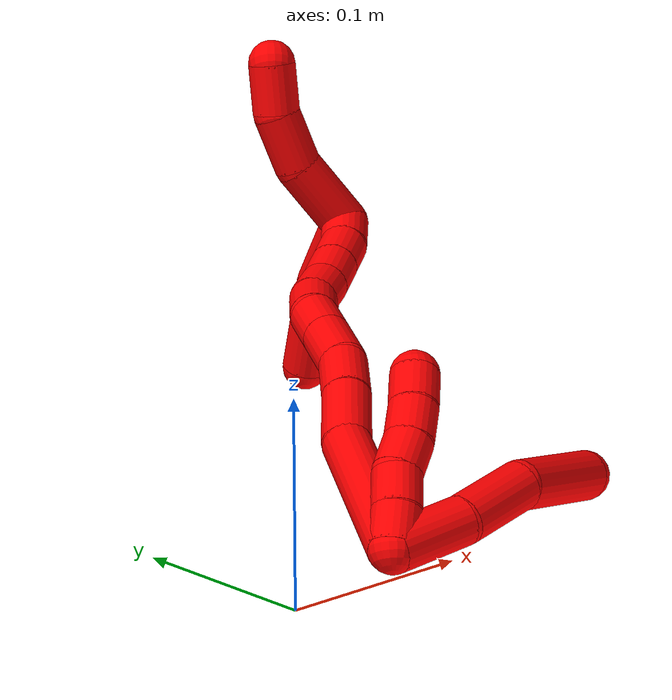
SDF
<sdf version="1.7">
 <world name="default">
  <model name="bin">
   <static>1</static>
   <link name="bottom">
    <collision name="collision-bottom">
     <pose>0 0 -0.01 0 -0 0</pose>
     <geometry><box><size>0.8 0.6 0.02</size></box></geometry>
     <surface>
      <friction><ode><mu>100</mu><mu2>100</mu2></ode></friction>
      <contact><collide_bitmask>65535</collide_bitmask></contact>
     </surface>
    </collision>
   </link>
   <link name="west_wall">
    <collision name="collision-west_wall">
     <pose>-0.41 0 0.1 0 -0 0</pose>
     <geometry><box><size>0.02 0.6 0.2</size></box></geometry>
     <surface>
      <friction><ode><mu>100</mu><mu2>100</mu2></ode></friction>
      <contact><collide_bitmask>65535</collide_bitmask></contact>
     </surface>
    </collision>
   </link>
   <link name="east_wall">
    <collision name="collision-east_wall">
     <pose>0.41 0 0.1 0 -0 0</pose>
     <geometry><box><size>0.02 0.6 0.2</size></box></geometry>
     <surface>
      <friction><ode><mu>100</mu><mu2>100</mu2></ode></friction>
      <contact><collide_bitmask>65535</collide_bitmask></contact>
     </surface>
    </collision>
   </link>
   <link name="south_wall">
    <collision name="collision-south_wall">
     <pose>0 -0.31 0.1 0 -0 0</pose>
     <geometry><box><size>0.8 0.02 0.2</size></box></geometry>
     <surface>
      <friction><ode><mu>100</mu><mu2>100</mu2></ode></friction>
      <contact><collide_bitmask>65535</collide_bitmask></contact>
     </surface>
    </collision>
   </link>
   <link name="north_wall">
    <collision name="collision-north_wall">
     <pose>0 0.31 0.1 0 -0 0</pose>
     <geometry><box><size>0.8 0.02 0.2</size></box></geometry>
     <surface>
      <friction><ode><mu>100</mu><mu2>100</mu2></ode></friction>
      <contact><collide_bitmask>65535</collide_bitmask></contact>
     </surface>
    </collision>
   </link>
  </model>
  <model name="2">
   <static>0</static>
   <link name="2">
    <collision name="collision-cylinder-e_1_2_8">
     <pose>0.018976 7.2e-05 0.008549 -0.008405 1.14749 -0.005432</pose>
     <geometry><cylinder><radius>0.0125</radius><length>0.041626</length></cylinder></geometry>
     <surface>
      <friction><ode><mu>1.16</mu><mu2>1.16</mu2><slip1>0</slip1><slip2>0</slip2></ode></friction>
      <contact><ode><kp>1e+06</kp><kd>1</kd><max_vel>0</max_vel><min_depth>0.001</min_depth></ode></contact>
     </surface>
    </collision>
    <visual name="visual-cylinder-e_1_2_8">
     <pose>0.018976 7.2e-05 0.008549 -0.008405 1.14749 -0.005432</pose>
     <geometry><cylinder><radius>0.0125</radius><length>0.041626</length></cylinder></geometry>
     <material><ambient>1 0 0 1</ambient></material>
    </visual>
    <collision name="collision-cylinder-e_2_8_9">
     <pose>0.05664 0.004055 0.028739 -0.32416 0.989438 -0.175965</pose>
     <geometry><cylinder><radius>0.0125</radius><length>0.044723</length></cylinder></geometry>
     <surface>
      <friction><ode><mu>1.16</mu><mu2>1.16</mu2><slip1>0</slip1><slip2>0</slip2></ode></friction>
      <contact><ode><kp>1e+06</kp><kd>1</kd><max_vel>0</max_vel><min_depth>0.001</min_depth></ode></contact>
     </surface>
    </collision>
    <visual name="visual-cylinder-e_2_8_9">
     <pose>0.05664 0.004055 0.028739 -0.32416 0.989438 -0.175965</pose>
     <geometry><cylinder><radius>0.0125</radius><length>0.044723</length></cylinder></geometry>
     <material><ambient>1 0 0 1</ambient></material>
    </visual>
    <collision name="collision-cylinder-e_3_9_6">
     <pose>0.102463 0.021744 0.049693 -0.976366 1.02098 -0.578124</pose>
     <geometry><cylinder><radius>0.0125</radius><length>0.063651</length></cylinder></geometry>
     <surface>
      <friction><ode><mu>1.16</mu><mu2>1.16</mu2><slip1>0</slip1><slip2>0</slip2></ode></friction>
      <contact><ode><kp>1e+06</kp><kd>1</kd><max_vel>0</max_vel><min_depth>0.001</min_depth></ode></contact>
     </surface>
    </collision>
    <visual name="visual-cylinder-e_3_9_6">
     <pose>0.102463 0.021744 0.049693 -0.976366 1.02098 -0.578124</pose>
     <geometry><cylinder><radius>0.0125</radius><length>0.063651</length></cylinder></geometry>
     <material><ambient>1 0 0 1</ambient></material>
    </visual>
    <collision name="collision-cylinder-e_1_2_10">
     <pose>0.002096 0.000942 0.009732 -0.096523 0.211161 -0.010237</pose>
     <geometry><cylinder><radius>0.0125</radius><length>0.02</length></cylinder></geometry>
     <surface>
      <friction><ode><mu>1.16</mu><mu2>1.16</mu2><slip1>0</slip1><slip2>0</slip2></ode></friction>
      <contact><ode><kp>1e+06</kp><kd>1</kd><max_vel>0</max_vel><min_depth>0.001</min_depth></ode></contact>
     </surface>
    </collision>
    <visual name="visual-cylinder-e_1_2_10">
     <pose>0.002096 0.000942 0.009732 -0.096523 0.211161 -0.010237</pose>
     <geometry><cylinder><radius>0.0125</radius><length>0.02</length></cylinder></geometry>
     <material><ambient>1 0 0 1</ambient></material>
    </visual>
    <collision name="collision-cylinder-e_2_10_11">
     <pose>0.005765 0.003593 0.029191 -0.173828 0.15798 -0.013794</pose>
     <geometry><cylinder><radius>0.0125</radius><length>0.02</length></cylinder></geometry>
     <surface>
      <friction><ode><mu>1.16</mu><mu2>1.16</mu2><slip1>0</slip1><slip2>0</slip2></ode></friction>
      <contact><ode><kp>1e+06</kp><kd>1</kd><max_vel>0</max_vel><min_depth>0.001</min_depth></ode></contact>
     </surface>
    </collision>
    <visual name="visual-cylinder-e_2_10_11">
     <pose>0.005765 0.003593 0.029191 -0.173828 0.15798 -0.013794</pose>
     <geometry><cylinder><radius>0.0125</radius><length>0.02</length></cylinder></geometry>
     <material><ambient>1 0 0 1</ambient></material>
    </visual>
    <collision name="collision-cylinder-e_3_11_12">
     <pose>0.01172 0.006743 0.047791 -0.161179 0.453524 -0.037265</pose>
     <geometry><cylinder><radius>0.0125</radius><length>0.02</length></cylinder></geometry>
     <surface>
      <friction><ode><mu>1.16</mu><mu2>1.16</mu2><slip1>0</slip1><slip2>0</slip2></ode></friction>
      <contact><ode><kp>1e+06</kp><kd>1</kd><max_vel>0</max_vel><min_depth>0.001</min_depth></ode></contact>
     </surface>
    </collision>
    <visual name="visual-cylinder-e_3_11_12">
     <pose>0.01172 0.006743 0.047791 -0.161179 0.453524 -0.037265</pose>
     <geometry><cylinder><radius>0.0125</radius><length>0.02</length></cylinder></geometry>
     <material><ambient>1 0 0 1</ambient></material>
    </visual>
    <collision name="collision-cylinder-e_4_12_13">
     <pose>0.018956 0.010058 0.066062 -0.196616 0.289478 -0.028749</pose>
     <geometry><cylinder><radius>0.0125</radius><length>0.02</length></cylinder></geometry>
     <surface>
      <friction><ode><mu>1.16</mu><mu2>1.16</mu2><slip1>0</slip1><slip2>0</slip2></ode></friction>
      <contact><ode><kp>1e+06</kp><kd>1</kd><max_vel>0</max_vel><min_depth>0.001</min_depth></ode></contact>
     </surface>
    </collision>
    <visual name="visual-cylinder-e_4_12_13">
     <pose>0.018956 0.010058 0.066062 -0.196616 0.289478 -0.028749</pose>
     <geometry><cylinder><radius>0.0125</radius><length>0.02</length></cylinder></geometry>
     <material><ambient>1 0 0 1</ambient></material>
    </visual>
    <collision name="collision-cylinder-e_5_13_5">
     <pose>0.024204 0.014677 0.084775 -0.286759 0.241701 -0.035062</pose>
     <geometry><cylinder><radius>0.0125</radius><length>0.02</length></cylinder></geometry>
     <surface>
      <friction><ode><mu>1.16</mu><mu2>1.16</mu2><slip1>0</slip1><slip2>0</slip2></ode></friction>
      <contact><ode><kp>1e+06</kp><kd>1</kd><max_vel>0</max_vel><min_depth>0.001</min_depth></ode></contact>
     </surface>
    </collision>
    <visual name="visual-cylinder-e_5_13_5">
     <pose>0.024204 0.014677 0.084775 -0.286759 0.241701 -0.035062</pose>
     <geometry><cylinder><radius>0.0125</radius><length>0.02</length></cylinder></geometry>
     <material><ambient>1 0 0 1</ambient></material>
    </visual>
    <collision name="collision-cylinder-e_1_2_14">
     <pose>0.003703 0.027671 0.03461 -0.674439 0.083366 -0.029244</pose>
     <geometry><cylinder><radius>0.0125</radius><length>0.088933</length></cylinder></geometry>
     <surface>
      <friction><ode><mu>1.16</mu><mu2>1.16</mu2><slip1>0</slip1><slip2>0</slip2></ode></friction>
      <contact><ode><kp>1e+06</kp><kd>1</kd><max_vel>0</max_vel><min_depth>0.001</min_depth></ode></contact>
     </surface>
    </collision>
    <visual name="visual-cylinder-e_1_2_14">
     <pose>0.003703 0.027671 0.03461 -0.674439 0.083366 -0.029244</pose>
     <geometry><cylinder><radius>0.0125</radius><length>0.088933</length></cylinder></geometry>
     <material><ambient>1 0 0 1</ambient></material>
    </visual>
    <collision name="collision-cylinder-e_2_14_15">
     <pose>0.011751 0.062463 0.084264 -0.442067 0.255365 -0.05768</pose>
     <geometry><cylinder><radius>0.0125</radius><length>0.034404</length></cylinder></geometry>
     <surface>
      <friction><ode><mu>1.16</mu><mu2>1.16</mu2><slip1>0</slip1><slip2>0</slip2></ode></friction>
      <contact><ode><kp>1e+06</kp><kd>1</kd><max_vel>0</max_vel><min_depth>0.001</min_depth></ode></contact>
     </surface>
    </collision>
    <visual name="visual-cylinder-e_2_14_15">
     <pose>0.011751 0.062463 0.084264 -0.442067 0.255365 -0.05768</pose>
     <geometry><cylinder><radius>0.0125</radius><length>0.034404</length></cylinder></geometry>
     <material><ambient>1 0 0 1</ambient></material>
    </visual>
    <collision name="collision-cylinder-e_3_15_16">
     <pose>0.018826 0.075772 0.110178 -0.51761 0.214931 -0.057106</pose>
     <geometry><cylinder><radius>0.0125</radius><length>0.025606</length></cylinder></geometry>
     <surface>
      <friction><ode><mu>1.16</mu><mu2>1.16</mu2><slip1>0</slip1><slip2>0</slip2></ode></friction>
      <contact><ode><kp>1e+06</kp><kd>1</kd><max_vel>0</max_vel><min_depth>0.001</min_depth></ode></contact>
     </surface>
    </collision>
    <visual name="visual-cylinder-e_3_15_16">
     <pose>0.018826 0.075772 0.110178 -0.51761 0.214931 -0.057106</pose>
     <geometry><cylinder><radius>0.0125</radius><length>0.025606</length></cylinder></geometry>
     <material><ambient>1 0 0 1</ambient></material>
    </visual>
    <collision name="collision-cylinder-e_4_16_17">
     <pose>0.022072 0.091203 0.131537 -0.722266 0.036844 -0.013917</pose>
     <geometry><cylinder><radius>0.0125</radius><length>0.027979</length></cylinder></geometry>
     <surface>
      <friction><ode><mu>1.16</mu><mu2>1.16</mu2><slip1>0</slip1><slip2>0</slip2></ode></friction>
      <contact><ode><kp>1e+06</kp><kd>1</kd><max_vel>0</max_vel><min_depth>0.001</min_depth></ode></contact>
     </surface>
    </collision>
    <visual name="visual-cylinder-e_4_16_17">
     <pose>0.022072 0.091203 0.131537 -0.722266 0.036844 -0.013917</pose>
     <geometry><cylinder><radius>0.0125</radius><length>0.027979</length></cylinder></geometry>
     <material><ambient>1 0 0 1</ambient></material>
    </visual>
    <collision name="collision-cylinder-e_5_17_18">
     <pose>0.022922 0.107646 0.150208 -0.721746 0.030677 -0.011578</pose>
     <geometry><cylinder><radius>0.0125</radius><length>0.021807</length></cylinder></geometry>
     <surface>
      <friction><ode><mu>1.16</mu><mu2>1.16</mu2><slip1>0</slip1><slip2>0</slip2></ode></friction>
      <contact><ode><kp>1e+06</kp><kd>1</kd><max_vel>0</max_vel><min_depth>0.001</min_depth></ode></contact>
     </surface>
    </collision>
    <visual name="visual-cylinder-e_5_17_18">
     <pose>0.022922 0.107646 0.150208 -0.721746 0.030677 -0.011578</pose>
     <geometry><cylinder><radius>0.0125</radius><length>0.021807</length></cylinder></geometry>
     <material><ambient>1 0 0 1</ambient></material>
    </visual>
    <collision name="collision-cylinder-e_6_18_19">
     <pose>0.026726 0.121584 0.165458 -0.761391 0.341411 -0.137764</pose>
     <geometry><cylinder><radius>0.0125</radius><length>0.020727</length></cylinder></geometry>
     <surface>
      <friction><ode><mu>1.16</mu><mu2>1.16</mu2><slip1>0</slip1><slip2>0</slip2></ode></friction>
      <contact><ode><kp>1e+06</kp><kd>1</kd><max_vel>0</max_vel><min_depth>0.001</min_depth></ode></contact>
     </surface>
    </collision>
    <visual name="visual-cylinder-e_6_18_19">
     <pose>0.026726 0.121584 0.165458 -0.761391 0.341411 -0.137764</pose>
     <geometry><cylinder><radius>0.0125</radius><length>0.020727</length></cylinder></geometry>
     <material><ambient>1 0 0 1</ambient></material>
    </visual>
    <collision name="collision-cylinder-e_7_19_20">
     <pose>0.03603 0.132969 0.179197 -0.608512 0.622358 -0.201303</pose>
     <geometry><cylinder><radius>0.0125</radius><length>0.020014</length></cylinder></geometry>
     <surface>
      <friction><ode><mu>1.16</mu><mu2>1.16</mu2><slip1>0</slip1><slip2>0</slip2></ode></friction>
      <contact><ode><kp>1e+06</kp><kd>1</kd><max_vel>0</max_vel><min_depth>0.001</min_depth></ode></contact>
     </surface>
    </collision>
    <visual name="visual-cylinder-e_7_19_20">
     <pose>0.03603 0.132969 0.179197 -0.608512 0.622358 -0.201303</pose>
     <geometry><cylinder><radius>0.0125</radius><length>0.020014</length></cylinder></geometry>
     <material><ambient>1 0 0 1</ambient></material>
    </visual>
    <collision name="collision-cylinder-e_8_20_21">
     <pose>0.047105 0.141499 0.193458 -0.472794 0.551313 -0.136071</pose>
     <geometry><cylinder><radius>0.0125</radius><length>0.020014</length></cylinder></geometry>
     <surface>
      <friction><ode><mu>1.16</mu><mu2>1.16</mu2><slip1>0</slip1><slip2>0</slip2></ode></friction>
      <contact><ode><kp>1e+06</kp><kd>1</kd><max_vel>0</max_vel><min_depth>0.001</min_depth></ode></contact>
     </surface>
    </collision>
    <visual name="visual-cylinder-e_8_20_21">
     <pose>0.047105 0.141499 0.193458 -0.472794 0.551313 -0.136071</pose>
     <geometry><cylinder><radius>0.0125</radius><length>0.020014</length></cylinder></geometry>
     <material><ambient>1 0 0 1</ambient></material>
    </visual>
    <collision name="collision-cylinder-e_9_21_22">
     <pose>0.057578 0.149372 0.208672 -0.482288 0.54614 -0.137536</pose>
     <geometry><cylinder><radius>0.0125</radius><length>0.020142</length></cylinder></geometry>
     <surface>
      <friction><ode><mu>1.16</mu><mu2>1.16</mu2><slip1>0</slip1><slip2>0</slip2></ode></friction>
      <contact><ode><kp>1e+06</kp><kd>1</kd><max_vel>0</max_vel><min_depth>0.001</min_depth></ode></contact>
     </surface>
    </collision>
    <visual name="visual-cylinder-e_9_21_22">
     <pose>0.057578 0.149372 0.208672 -0.482288 0.54614 -0.137536</pose>
     <geometry><cylinder><radius>0.0125</radius><length>0.020142</length></cylinder></geometry>
     <material><ambient>1 0 0 1</ambient></material>
    </visual>
    <collision name="collision-cylinder-e_10_22_1">
     <pose>0.065921 0.157865 0.224888 -0.48259 0.310536 -0.077002</pose>
     <geometry><cylinder><radius>0.0125</radius><length>0.020375</length></cylinder></geometry>
     <surface>
      <friction><ode><mu>1.16</mu><mu2>1.16</mu2><slip1>0</slip1><slip2>0</slip2></ode></friction>
      <contact><ode><kp>1e+06</kp><kd>1</kd><max_vel>0</max_vel><min_depth>0.001</min_depth></ode></contact>
     </surface>
    </collision>
    <visual name="visual-cylinder-e_10_22_1">
     <pose>0.065921 0.157865 0.224888 -0.48259 0.310536 -0.077002</pose>
     <geometry><cylinder><radius>0.0125</radius><length>0.020375</length></cylinder></geometry>
     <material><ambient>1 0 0 1</ambient></material>
    </visual>
    <collision name="collision-cylinder-e_1_1_23">
     <pose>0.071353 0.183267 0.224162 -1.99021 0.100967 -0.155384</pose>
     <geometry><cylinder><radius>0.0125</radius><length>0.046002</length></cylinder></geometry>
     <surface>
      <friction><ode><mu>1.16</mu><mu2>1.16</mu2><slip1>0</slip1><slip2>0</slip2></ode></friction>
      <contact><ode><kp>1e+06</kp><kd>1</kd><max_vel>0</max_vel><min_depth>0.001</min_depth></ode></contact>
     </surface>
    </collision>
    <visual name="visual-cylinder-e_1_1_23">
     <pose>0.071353 0.183267 0.224162 -1.99021 0.100967 -0.155384</pose>
     <geometry><cylinder><radius>0.0125</radius><length>0.046002</length></cylinder></geometry>
     <material><ambient>1 0 0 1</ambient></material>
    </visual>
    <collision name="collision-cylinder-e_2_23_24">
     <pose>0.075504 0.212655 0.207536 -2.28163 0.162197 -0.350814</pose>
     <geometry><cylinder><radius>0.0125</radius><length>0.022697</length></cylinder></geometry>
     <surface>
      <friction><ode><mu>1.16</mu><mu2>1.16</mu2><slip1>0</slip1><slip2>0</slip2></ode></friction>
      <contact><ode><kp>1e+06</kp><kd>1</kd><max_vel>0</max_vel><min_depth>0.001</min_depth></ode></contact>
     </surface>
    </collision>
    <visual name="visual-cylinder-e_2_23_24">
     <pose>0.075504 0.212655 0.207536 -2.28163 0.162197 -0.350814</pose>
     <geometry><cylinder><radius>0.0125</radius><length>0.022697</length></cylinder></geometry>
     <material><ambient>1 0 0 1</ambient></material>
    </visual>
    <collision name="collision-cylinder-e_3_24_4">
     <pose>0.080067 0.23285 0.190208 -2.27869 0.175366 -0.377356</pose>
     <geometry><cylinder><radius>0.0125</radius><length>0.031302</length></cylinder></geometry>
     <surface>
      <friction><ode><mu>1.16</mu><mu2>1.16</mu2><slip1>0</slip1><slip2>0</slip2></ode></friction>
      <contact><ode><kp>1e+06</kp><kd>1</kd><max_vel>0</max_vel><min_depth>0.001</min_depth></ode></contact>
     </surface>
    </collision>
    <visual name="visual-cylinder-e_3_24_4">
     <pose>0.080067 0.23285 0.190208 -2.27869 0.175366 -0.377356</pose>
     <geometry><cylinder><radius>0.0125</radius><length>0.031302</length></cylinder></geometry>
     <material><ambient>1 0 0 1</ambient></material>
    </visual>
    <collision name="collision-cylinder-e_1_1_25">
     <pose>0.052575 0.156501 0.245382 0.457918 -0.892307 -0.222024</pose>
     <geometry><cylinder><radius>0.0125</radius><length>0.042282</length></cylinder></geometry>
     <surface>
      <friction><ode><mu>1.16</mu><mu2>1.16</mu2><slip1>0</slip1><slip2>0</slip2></ode></friction>
      <contact><ode><kp>1e+06</kp><kd>1</kd><max_vel>0</max_vel><min_depth>0.001</min_depth></ode></contact>
     </surface>
    </collision>
    <visual name="visual-cylinder-e_1_1_25">
     <pose>0.052575 0.156501 0.245382 0.457918 -0.892307 -0.222024</pose>
     <geometry><cylinder><radius>0.0125</radius><length>0.042282</length></cylinder></geometry>
     <material><ambient>1 0 0 1</ambient></material>
    </visual>
    <collision name="collision-cylinder-e_2_25_26">
     <pose>0.027399 0.144455 0.268582 0.500545 -0.595069 -0.156453</pose>
     <geometry><cylinder><radius>0.0125</radius><length>0.031102</length></cylinder></geometry>
     <surface>
      <friction><ode><mu>1.16</mu><mu2>1.16</mu2><slip1>0</slip1><slip2>0</slip2></ode></friction>
      <contact><ode><kp>1e+06</kp><kd>1</kd><max_vel>0</max_vel><min_depth>0.001</min_depth></ode></contact>
     </surface>
    </collision>
    <visual name="visual-cylinder-e_2_25_26">
     <pose>0.027399 0.144455 0.268582 0.500545 -0.595069 -0.156453</pose>
     <geometry><cylinder><radius>0.0125</radius><length>0.031102</length></cylinder></geometry>
     <material><ambient>1 0 0 1</ambient></material>
    </visual>
    <collision name="collision-cylinder-e_3_26_3">
     <pose>0.015056 0.132493 0.291305 0.46846 -0.275988 -0.066251</pose>
     <geometry><cylinder><radius>0.0125</radius><length>0.026616</length></cylinder></geometry>
     <surface>
      <friction><ode><mu>1.16</mu><mu2>1.16</mu2><slip1>0</slip1><slip2>0</slip2></ode></friction>
      <contact><ode><kp>1e+06</kp><kd>1</kd><max_vel>0</max_vel><min_depth>0.001</min_depth></ode></contact>
     </surface>
    </collision>
    <visual name="visual-cylinder-e_3_26_3">
     <pose>0.015056 0.132493 0.291305 0.46846 -0.275988 -0.066251</pose>
     <geometry><cylinder><radius>0.0125</radius><length>0.026616</length></cylinder></geometry>
     <material><ambient>1 0 0 1</ambient></material>
    </visual>
    <collision name="collision-sphere-3">
     <pose>0.011429 0.126712 0.30273 0 -0 0</pose>
     <geometry><sphere><radius>0.0125</radius></sphere></geometry>
     <surface>
      <friction><ode><mu>1.16</mu><mu2>1.16</mu2><slip1>0</slip1><slip2>0</slip2></ode></friction>
      <contact><ode><kp>1e+06</kp><kd>1</kd><max_vel>0</max_vel><min_depth>0.001</min_depth></ode></contact>
     </surface>
    </collision>
    <visual name="visual-sphere-3">
     <pose>0.011429 0.126712 0.30273 0 -0 0</pose>
     <geometry><sphere><radius>0.0125</radius></sphere></geometry>
     <material><ambient>1 0 0 1</ambient></material>
    </visual>
    <collision name="collision-sphere-26">
     <pose>0.018682 0.138275 0.27988 0 -0 0</pose>
     <geometry><sphere><radius>0.0125</radius></sphere></geometry>
     <surface>
      <friction><ode><mu>1.16</mu><mu2>1.16</mu2><slip1>0</slip1><slip2>0</slip2></ode></friction>
      <contact><ode><kp>1e+06</kp><kd>1</kd><max_vel>0</max_vel><min_depth>0.001</min_depth></ode></contact>
     </surface>
    </collision>
    <visual name="visual-sphere-26">
     <pose>0.018682 0.138275 0.27988 0 -0 0</pose>
     <geometry><sphere><radius>0.0125</radius></sphere></geometry>
     <material><ambient>1 0 0 1</ambient></material>
    </visual>
    <collision name="collision-sphere-25">
     <pose>0.036117 0.150635 0.257284 0 -0 0</pose>
     <geometry><sphere><radius>0.0125</radius></sphere></geometry>
     <surface>
      <friction><ode><mu>1.16</mu><mu2>1.16</mu2><slip1>0</slip1><slip2>0</slip2></ode></friction>
      <contact><ode><kp>1e+06</kp><kd>1</kd><max_vel>0</max_vel><min_depth>0.001</min_depth></ode></contact>
     </surface>
    </collision>
    <visual name="visual-sphere-25">
     <pose>0.036117 0.150635 0.257284 0 -0 0</pose>
     <geometry><sphere><radius>0.0125</radius></sphere></geometry>
     <material><ambient>1 0 0 1</ambient></material>
    </visual>
    <collision name="collision-sphere-4">
     <pose>0.082797 0.244558 0.180187 0 -0 0</pose>
     <geometry><sphere><radius>0.0125</radius></sphere></geometry>
     <surface>
      <friction><ode><mu>1.16</mu><mu2>1.16</mu2><slip1>0</slip1><slip2>0</slip2></ode></friction>
      <contact><ode><kp>1e+06</kp><kd>1</kd><max_vel>0</max_vel><min_depth>0.001</min_depth></ode></contact>
     </surface>
    </collision>
    <visual name="visual-sphere-4">
     <pose>0.082797 0.244558 0.180187 0 -0 0</pose>
     <geometry><sphere><radius>0.0125</radius></sphere></geometry>
     <material><ambient>1 0 0 1</ambient></material>
    </visual>
    <collision name="collision-sphere-24">
     <pose>0.077336 0.221142 0.200229 0 -0 0</pose>
     <geometry><sphere><radius>0.0125</radius></sphere></geometry>
     <surface>
      <friction><ode><mu>1.16</mu><mu2>1.16</mu2><slip1>0</slip1><slip2>0</slip2></ode></friction>
      <contact><ode><kp>1e+06</kp><kd>1</kd><max_vel>0</max_vel><min_depth>0.001</min_depth></ode></contact>
     </surface>
    </collision>
    <visual name="visual-sphere-24">
     <pose>0.077336 0.221142 0.200229 0 -0 0</pose>
     <geometry><sphere><radius>0.0125</radius></sphere></geometry>
     <material><ambient>1 0 0 1</ambient></material>
    </visual>
    <collision name="collision-sphere-23">
     <pose>0.073671 0.204168 0.214843 0 -0 0</pose>
     <geometry><sphere><radius>0.0125</radius></sphere></geometry>
     <surface>
      <friction><ode><mu>1.16</mu><mu2>1.16</mu2><slip1>0</slip1><slip2>0</slip2></ode></friction>
      <contact><ode><kp>1e+06</kp><kd>1</kd><max_vel>0</max_vel><min_depth>0.001</min_depth></ode></contact>
     </surface>
    </collision>
    <visual name="visual-sphere-23">
     <pose>0.073671 0.204168 0.214843 0 -0 0</pose>
     <geometry><sphere><radius>0.0125</radius></sphere></geometry>
     <material><ambient>1 0 0 1</ambient></material>
    </visual>
    <collision name="collision-sphere-1">
     <pose>0.069034 0.162367 0.233481 0 -0 0</pose>
     <geometry><sphere><radius>0.0125</radius></sphere></geometry>
     <surface>
      <friction><ode><mu>1.16</mu><mu2>1.16</mu2><slip1>0</slip1><slip2>0</slip2></ode></friction>
      <contact><ode><kp>1e+06</kp><kd>1</kd><max_vel>0</max_vel><min_depth>0.001</min_depth></ode></contact>
     </surface>
    </collision>
    <visual name="visual-sphere-1">
     <pose>0.069034 0.162367 0.233481 0 -0 0</pose>
     <geometry><sphere><radius>0.0125</radius></sphere></geometry>
     <material><ambient>1 0 0 1</ambient></material>
    </visual>
    <collision name="collision-sphere-22">
     <pose>0.062808 0.153364 0.216296 0 -0 0</pose>
     <geometry><sphere><radius>0.0125</radius></sphere></geometry>
     <surface>
      <friction><ode><mu>1.16</mu><mu2>1.16</mu2><slip1>0</slip1><slip2>0</slip2></ode></friction>
      <contact><ode><kp>1e+06</kp><kd>1</kd><max_vel>0</max_vel><min_depth>0.001</min_depth></ode></contact>
     </surface>
    </collision>
    <visual name="visual-sphere-22">
     <pose>0.062808 0.153364 0.216296 0 -0 0</pose>
     <geometry><sphere><radius>0.0125</radius></sphere></geometry>
     <material><ambient>1 0 0 1</ambient></material>
    </visual>
    <collision name="collision-sphere-21">
     <pose>0.052347 0.14538 0.201047 0 -0 0</pose>
     <geometry><sphere><radius>0.0125</radius></sphere></geometry>
     <surface>
      <friction><ode><mu>1.16</mu><mu2>1.16</mu2><slip1>0</slip1><slip2>0</slip2></ode></friction>
      <contact><ode><kp>1e+06</kp><kd>1</kd><max_vel>0</max_vel><min_depth>0.001</min_depth></ode></contact>
     </surface>
    </collision>
    <visual name="visual-sphere-21">
     <pose>0.052347 0.14538 0.201047 0 -0 0</pose>
     <geometry><sphere><radius>0.0125</radius></sphere></geometry>
     <material><ambient>1 0 0 1</ambient></material>
    </visual>
    <collision name="collision-sphere-11">
     <pose>0.007338 0.005301 0.038918 0 -0 0</pose>
     <geometry><sphere><radius>0.0125</radius></sphere></geometry>
     <surface>
      <friction><ode><mu>1.16</mu><mu2>1.16</mu2><slip1>0</slip1><slip2>0</slip2></ode></friction>
      <contact><ode><kp>1e+06</kp><kd>1</kd><max_vel>0</max_vel><min_depth>0.001</min_depth></ode></contact>
     </surface>
    </collision>
    <visual name="visual-sphere-11">
     <pose>0.007338 0.005301 0.038918 0 -0 0</pose>
     <geometry><sphere><radius>0.0125</radius></sphere></geometry>
     <material><ambient>1 0 0 1</ambient></material>
    </visual>
    <collision name="collision-sphere-10">
     <pose>0.004192 0.001885 0.019465 0 -0 0</pose>
     <geometry><sphere><radius>0.0125</radius></sphere></geometry>
     <surface>
      <friction><ode><mu>1.16</mu><mu2>1.16</mu2><slip1>0</slip1><slip2>0</slip2></ode></friction>
      <contact><ode><kp>1e+06</kp><kd>1</kd><max_vel>0</max_vel><min_depth>0.001</min_depth></ode></contact>
     </surface>
    </collision>
    <visual name="visual-sphere-10">
     <pose>0.004192 0.001885 0.019465 0 -0 0</pose>
     <geometry><sphere><radius>0.0125</radius></sphere></geometry>
     <material><ambient>1 0 0 1</ambient></material>
    </visual>
    <collision name="collision-sphere-6">
     <pose>0.129598 0.035521 0.059006 0 -0 0</pose>
     <geometry><sphere><radius>0.0125</radius></sphere></geometry>
     <surface>
      <friction><ode><mu>1.16</mu><mu2>1.16</mu2><slip1>0</slip1><slip2>0</slip2></ode></friction>
      <contact><ode><kp>1e+06</kp><kd>1</kd><max_vel>0</max_vel><min_depth>0.001</min_depth></ode></contact>
     </surface>
    </collision>
    <visual name="visual-sphere-6">
     <pose>0.129598 0.035521 0.059006 0 -0 0</pose>
     <geometry><sphere><radius>0.0125</radius></sphere></geometry>
     <material><ambient>1 0 0 1</ambient></material>
    </visual>
    <collision name="collision-sphere-9">
     <pose>0.075328 0.007966 0.04038 0 -0 0</pose>
     <geometry><sphere><radius>0.0125</radius></sphere></geometry>
     <surface>
      <friction><ode><mu>1.16</mu><mu2>1.16</mu2><slip1>0</slip1><slip2>0</slip2></ode></friction>
      <contact><ode><kp>1e+06</kp><kd>1</kd><max_vel>0</max_vel><min_depth>0.001</min_depth></ode></contact>
     </surface>
    </collision>
    <visual name="visual-sphere-9">
     <pose>0.075328 0.007966 0.04038 0 -0 0</pose>
     <geometry><sphere><radius>0.0125</radius></sphere></geometry>
     <material><ambient>1 0 0 1</ambient></material>
    </visual>
    <collision name="collision-sphere-2">
     <geometry><sphere><radius>0.0125</radius></sphere></geometry>
     <surface>
      <friction><ode><mu>1.16</mu><mu2>1.16</mu2><slip1>0</slip1><slip2>0</slip2></ode></friction>
      <contact><ode><kp>1e+06</kp><kd>1</kd><max_vel>0</max_vel><min_depth>0.001</min_depth></ode></contact>
     </surface>
    </collision>
    <visual name="visual-sphere-2">
     <geometry><sphere><radius>0.0125</radius></sphere></geometry>
     <material><ambient>1 0 0 1</ambient></material>
    </visual>
    <collision name="collision-sphere-19">
     <pose>0.030196 0.128321 0.172526 0 -0 0</pose>
     <geometry><sphere><radius>0.0125</radius></sphere></geometry>
     <surface>
      <friction><ode><mu>1.16</mu><mu2>1.16</mu2><slip1>0</slip1><slip2>0</slip2></ode></friction>
      <contact><ode><kp>1e+06</kp><kd>1</kd><max_vel>0</max_vel><min_depth>0.001</min_depth></ode></contact>
     </surface>
    </collision>
    <visual name="visual-sphere-19">
     <pose>0.030196 0.128321 0.172526 0 -0 0</pose>
     <geometry><sphere><radius>0.0125</radius></sphere></geometry>
     <material><ambient>1 0 0 1</ambient></material>
    </visual>
    <collision name="collision-sphere-8">
     <pose>0.037952 0.000144 0.017098 0 -0 0</pose>
     <geometry><sphere><radius>0.0125</radius></sphere></geometry>
     <surface>
      <friction><ode><mu>1.16</mu><mu2>1.16</mu2><slip1>0</slip1><slip2>0</slip2></ode></friction>
      <contact><ode><kp>1e+06</kp><kd>1</kd><max_vel>0</max_vel><min_depth>0.001</min_depth></ode></contact>
     </surface>
    </collision>
    <visual name="visual-sphere-8">
     <pose>0.037952 0.000144 0.017098 0 -0 0</pose>
     <geometry><sphere><radius>0.0125</radius></sphere></geometry>
     <material><ambient>1 0 0 1</ambient></material>
    </visual>
    <collision name="collision-sphere-12">
     <pose>0.016101 0.008186 0.056663 0 -0 0</pose>
     <geometry><sphere><radius>0.0125</radius></sphere></geometry>
     <surface>
      <friction><ode><mu>1.16</mu><mu2>1.16</mu2><slip1>0</slip1><slip2>0</slip2></ode></friction>
      <contact><ode><kp>1e+06</kp><kd>1</kd><max_vel>0</max_vel><min_depth>0.001</min_depth></ode></contact>
     </surface>
    </collision>
    <visual name="visual-sphere-12">
     <pose>0.016101 0.008186 0.056663 0 -0 0</pose>
     <geometry><sphere><radius>0.0125</radius></sphere></geometry>
     <material><ambient>1 0 0 1</ambient></material>
    </visual>
    <collision name="collision-sphere-13">
     <pose>0.02181 0.01193 0.075462 0 -0 0</pose>
     <geometry><sphere><radius>0.0125</radius></sphere></geometry>
     <surface>
      <friction><ode><mu>1.16</mu><mu2>1.16</mu2><slip1>0</slip1><slip2>0</slip2></ode></friction>
      <contact><ode><kp>1e+06</kp><kd>1</kd><max_vel>0</max_vel><min_depth>0.001</min_depth></ode></contact>
     </surface>
    </collision>
    <visual name="visual-sphere-13">
     <pose>0.02181 0.01193 0.075462 0 -0 0</pose>
     <geometry><sphere><radius>0.0125</radius></sphere></geometry>
     <material><ambient>1 0 0 1</ambient></material>
    </visual>
    <collision name="collision-sphere-5">
     <pose>0.026597 0.017423 0.094087 0 -0 0</pose>
     <geometry><sphere><radius>0.0125</radius></sphere></geometry>
     <surface>
      <friction><ode><mu>1.16</mu><mu2>1.16</mu2><slip1>0</slip1><slip2>0</slip2></ode></friction>
      <contact><ode><kp>1e+06</kp><kd>1</kd><max_vel>0</max_vel><min_depth>0.001</min_depth></ode></contact>
     </surface>
    </collision>
    <visual name="visual-sphere-5">
     <pose>0.026597 0.017423 0.094087 0 -0 0</pose>
     <geometry><sphere><radius>0.0125</radius></sphere></geometry>
     <material><ambient>1 0 0 1</ambient></material>
    </visual>
    <collision name="collision-sphere-14">
     <pose>0.007405 0.055342 0.06922 0 -0 0</pose>
     <geometry><sphere><radius>0.0125</radius></sphere></geometry>
     <surface>
      <friction><ode><mu>1.16</mu><mu2>1.16</mu2><slip1>0</slip1><slip2>0</slip2></ode></friction>
      <contact><ode><kp>1e+06</kp><kd>1</kd><max_vel>0</max_vel><min_depth>0.001</min_depth></ode></contact>
     </surface>
    </collision>
    <visual name="visual-sphere-14">
     <pose>0.007405 0.055342 0.06922 0 -0 0</pose>
     <geometry><sphere><radius>0.0125</radius></sphere></geometry>
     <material><ambient>1 0 0 1</ambient></material>
    </visual>
    <collision name="collision-sphere-15">
     <pose>0.016096 0.069583 0.099309 0 -0 0</pose>
     <geometry><sphere><radius>0.0125</radius></sphere></geometry>
     <surface>
      <friction><ode><mu>1.16</mu><mu2>1.16</mu2><slip1>0</slip1><slip2>0</slip2></ode></friction>
      <contact><ode><kp>1e+06</kp><kd>1</kd><max_vel>0</max_vel><min_depth>0.001</min_depth></ode></contact>
     </surface>
    </collision>
    <visual name="visual-sphere-15">
     <pose>0.016096 0.069583 0.099309 0 -0 0</pose>
     <geometry><sphere><radius>0.0125</radius></sphere></geometry>
     <material><ambient>1 0 0 1</ambient></material>
    </visual>
    <collision name="collision-sphere-16">
     <pose>0.021557 0.081961 0.121048 0 -0 0</pose>
     <geometry><sphere><radius>0.0125</radius></sphere></geometry>
     <surface>
      <friction><ode><mu>1.16</mu><mu2>1.16</mu2><slip1>0</slip1><slip2>0</slip2></ode></friction>
      <contact><ode><kp>1e+06</kp><kd>1</kd><max_vel>0</max_vel><min_depth>0.001</min_depth></ode></contact>
     </surface>
    </collision>
    <visual name="visual-sphere-16">
     <pose>0.021557 0.081961 0.121048 0 -0 0</pose>
     <geometry><sphere><radius>0.0125</radius></sphere></geometry>
     <material><ambient>1 0 0 1</ambient></material>
    </visual>
    <collision name="collision-sphere-17">
     <pose>0.022588 0.100446 0.142027 0 -0 0</pose>
     <geometry><sphere><radius>0.0125</radius></sphere></geometry>
     <surface>
      <friction><ode><mu>1.16</mu><mu2>1.16</mu2><slip1>0</slip1><slip2>0</slip2></ode></friction>
      <contact><ode><kp>1e+06</kp><kd>1</kd><max_vel>0</max_vel><min_depth>0.001</min_depth></ode></contact>
     </surface>
    </collision>
    <visual name="visual-sphere-17">
     <pose>0.022588 0.100446 0.142027 0 -0 0</pose>
     <geometry><sphere><radius>0.0125</radius></sphere></geometry>
     <material><ambient>1 0 0 1</ambient></material>
    </visual>
    <collision name="collision-sphere-18">
     <pose>0.023256 0.114847 0.158389 0 -0 0</pose>
     <geometry><sphere><radius>0.0125</radius></sphere></geometry>
     <surface>
      <friction><ode><mu>1.16</mu><mu2>1.16</mu2><slip1>0</slip1><slip2>0</slip2></ode></friction>
      <contact><ode><kp>1e+06</kp><kd>1</kd><max_vel>0</max_vel><min_depth>0.001</min_depth></ode></contact>
     </surface>
    </collision>
    <visual name="visual-sphere-18">
     <pose>0.023256 0.114847 0.158389 0 -0 0</pose>
     <geometry><sphere><radius>0.0125</radius></sphere></geometry>
     <material><ambient>1 0 0 1</ambient></material>
    </visual>
    <collision name="collision-sphere-20">
     <pose>0.041863 0.137617 0.185869 0 -0 0</pose>
     <geometry><sphere><radius>0.0125</radius></sphere></geometry>
     <surface>
      <friction><ode><mu>1.16</mu><mu2>1.16</mu2><slip1>0</slip1><slip2>0</slip2></ode></friction>
      <contact><ode><kp>1e+06</kp><kd>1</kd><max_vel>0</max_vel><min_depth>0.001</min_depth></ode></contact>
     </surface>
    </collision>
    <visual name="visual-sphere-20">
     <pose>0.041863 0.137617 0.185869 0 -0 0</pose>
     <geometry><sphere><radius>0.0125</radius></sphere></geometry>
     <material><ambient>1 0 0 1</ambient></material>
    </visual>
    <inertial>
     <pose>0.038842 0.084211 0.123254 0 -0 0</pose>
     <mass>0.75</mass>
     <inertia>
      <ixx>0.000129</ixx>
      <ixy>0</ixy>
      <ixz>0</ixz>
      <iyy>0.00012</iyy>
      <iyz>0</iyz>
      <izz>-7.9e-05</izz>
     </inertia>
    </inertial>
   </link>
   <pose>0.067449 0.006542 0.012165 -0.574138 0.22742 -0.335862</pose>
  </model>
 </world>
</sdf>
